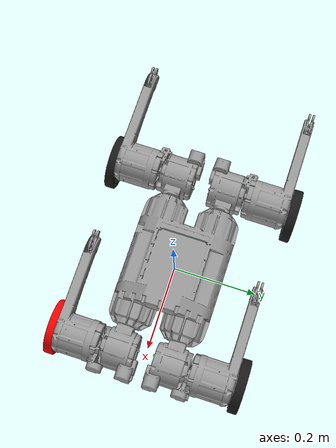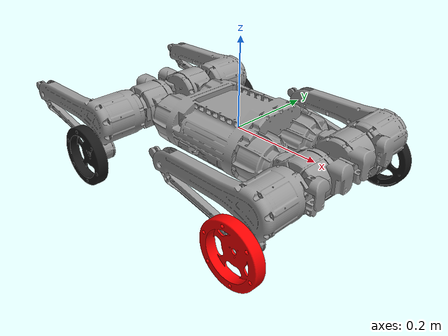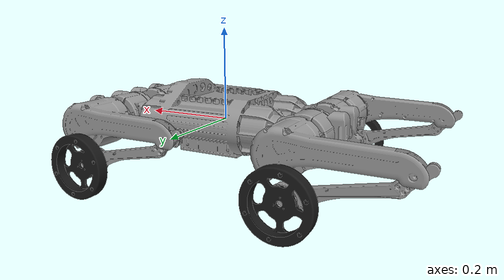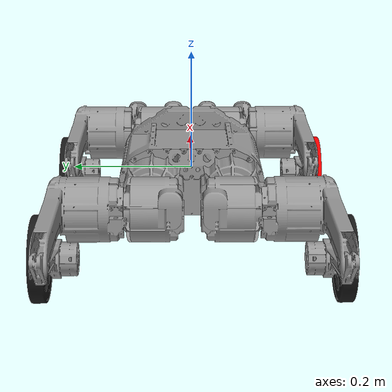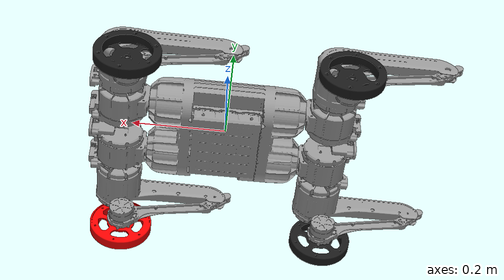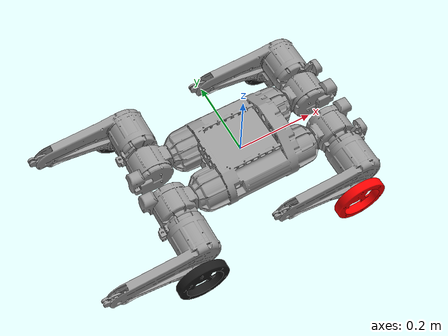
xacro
<?xml version="1.0"?>
<robot name="hb50w" xmlns:xacro="http://www.ros.org/wiki/xacro">

  <!-- sim: none | mock | gazebo -->
  <xacro:arg name="sim" default="none" />
  <xacro:if value="${'$(arg sim)' not in ['none', 'mock', 'gazebo']}">
    ${xacro.fatal("sim must be none, mock or gazebo, got '$(arg sim)'")}
  </xacro:if>

  <xacro:include filename="../common/_materials.xacro" />
  <xacro:include filename="_hb50w_leg_macro.xacro" />

  <!-- Root link, free-floating base -->
  <link name="body">
    <inertial>
      <mass value="9.222" />
      <inertia ixx="0.04644" ixy="0" ixz="0" iyy="0.10130" iyz="0" izz="0.13120" />
    </inertial>
    <visual>
      <geometry>
        <mesh filename="${hb50w_mesh_dir}/hb50w_body.stl" scale="0.001 0.001 0.001" />
      </geometry>
      <material name="silver" />
    </visual>
    <collision>
      <origin xyz="0 0 -0.002" />
      <geometry>
        <box size="0.196 0.152 0.124" />
      </geometry>
    </collision>
    <collision>
      <origin xyz="0 -0.064 0" rpy="0 1.570796 0" />
      <geometry>
        <cylinder length="0.33" radius="0.056" />
      </geometry>
    </collision>
    <collision>
      <origin xyz="0 0.064 0" rpy="0 1.570796 0" />
      <geometry>
        <cylinder length="0.33" radius="0.056" />
      </geometry>
    </collision>
    <collision>
      <origin xyz="0.09 0 0.057" />
      <geometry>
        <box size="0.048 0.128 0.048" />
      </geometry>
    </collision>
  </link>

  <!-- ================= FR (leg 0) ================= -->
  <xacro:hb50w_leg
    prefix="fr"
    j0_xyz="0.1661 -0.064 0" j0_lower="-1.047198" j0_upper="1.570796"
    l0_mesh="hb50w_l0_fr_rl.stl" l0_mass="1.536" l0_inertial_xyz="0.059079 0.004785 -0.000588"
    l0_ixx="0.001492" l0_iyy="0.001701" l0_izz="0.001759"
    j1_xyz="0.0585 -0.0425 0" j1_rpy="0 0 -1.570796" j1_lower="-1.570796" j1_upper="1.570796"
    l1_mass="1.784" l1_inertial_xyz="0.055224 -0.015337 0.003302" l1_ixx="0.006461" l1_iyy="0.002438" l1_izz="0.007101"
    l1_mesh="hb50w_l1_fr.stl"
    l1_collision2_xyz="0.098 -0.134 0.013" l1_collision2_rpy="0.05 0 0"
    j2_xyz="0.10015 -0.22 0" j2_rpy="2.792527 0 0" j2_lower="-2.705260" j2_upper="0"
    l2_inertial_xyz="-0.001567 -0.190811 0.000848" l2_mesh="hb50w_l2_r.stl" l2_visual_rpy="3.141593 0 0"
    l2_collision1_xyz="0 0.01 0.004" l2_collision1_rpy="1.2 0 0"
    l2_collision2_xyz="0 -0.11 0.006" l2_collision2_rpy="1.699994 0.003670 0.010561"
    l2_collision3_xyz="-0.0072 -0.22 0"
    j3_xyz="0.0175 -0.22 0" wheel_material="red"
  />

  <!-- ================= FL (leg 1) ================= -->
  <xacro:hb50w_leg
    prefix="fl"
    j0_xyz="0.1661 0.064 0" j0_lower="-1.570796" j0_upper="1.047198"
    l0_mesh="hb50w_l0_fl_rr.stl" l0_mass="1.536" l0_inertial_xyz="0.059079 -0.004785 0.000588"
    l0_ixx="0.001492" l0_iyy="0.001701" l0_izz="0.001759"
    j1_xyz="0.0585 0.0425 0" j1_rpy="0 0 1.570796" j1_lower="-1.570796" j1_upper="1.570796"
    l1_mass="1.784" l1_inertial_xyz="0.055224 0.015337 0.003302" l1_ixx="0.006461" l1_iyy="0.002438" l1_izz="0.007101"
    l1_mesh="hb50w_l1_fl.stl" l1_visual_rpy="0 0 3.141593"
    l1_collision2_xyz="0.098 0.134 0.013" l1_collision2_rpy="-0.05 0 0"
    j2_xyz="0.10015 0.22 0" j2_rpy="-2.792527 0 0" j2_lower="0" j2_upper="2.705260"
    l2_inertial_xyz="-0.001567 0.190811 0.000848" l2_mesh="hb50w_l2_l.stl" l2_visual_rpy="0 3.141593 0"
    l2_collision1_xyz="0 -0.01 0.004" l2_collision1_rpy="-1.2 0 0"
    l2_collision2_xyz="0 0.11 0.006" l2_collision2_rpy="-1.699994 0.003670 -0.010561"
    l2_collision3_xyz="-0.0072 0.22 0"
    j3_xyz="0.0175 0.22 0" wheel_material="black"
  />

  <!-- ================= RL (leg 2) ================= -->
  <xacro:hb50w_leg
    prefix="rl"
    j0_xyz="-0.1645 0.064 0" j0_rpy="0 0 -3.141593" j0_lower="-1.047198" j0_upper="1.570796"
    l0_mesh="hb50w_l0_fr_rl.stl" l0_mass="1.525" l0_inertial_xyz="0.058684 0.004487 0.000600"
    l0_ixx="0.001474" l0_iyy="0.001666" l0_izz="0.001711"
    j1_xyz="0.0585 -0.0425 0" j1_rpy="0 0 -1.570796" j1_lower="-3.141593" j1_upper="1.570796"
    l1_mass="1.753" l1_inertial_xyz="0.055591 0.019865 0.002679" l1_ixx="0.006329" l1_iyy="0.002338" l1_izz="0.006986"
    l1_mesh="hb50w_l1_rl.stl" l1_visual_rpy="0 0 3.141593"
    l1_collision2_xyz="0.098 0.134 0.013" l1_collision2_rpy="-0.05 0 0"
    j2_xyz="0.10015 0.22 0" j2_rpy="-2.792527 0 0" j2_lower="0" j2_upper="2.705260"
    l2_inertial_xyz="-0.001567 0.190811 0.000848" l2_mesh="hb50w_l2_l.stl" l2_visual_rpy="0 3.141593 0"
    l2_collision1_xyz="0 -0.01 0.004" l2_collision1_rpy="-1.2 0 0"
    l2_collision2_xyz="0 0.11 0.006" l2_collision2_rpy="-1.699994 0.003670 -0.010561"
    l2_collision3_xyz="-0.0072 0.22 0"
    j3_xyz="0.0175 0.22 0" wheel_material="black"
  />

  <!-- ================= RR (leg 3) ================= -->
  <xacro:hb50w_leg
    prefix="rr"
    j0_xyz="-0.1645 -0.064 0" j0_rpy="0 0 -3.141593" j0_lower="-1.570796" j0_upper="1.047198"
    l0_mesh="hb50w_l0_fl_rr.stl" l0_mass="1.525" l0_inertial_xyz="0.058684 -0.004487 -0.000600"
    l0_ixx="0.001474" l0_iyy="0.001666" l0_izz="0.001711"
    j1_xyz="0.0585 0.0425 0" j1_rpy="0 0 1.570796" j1_lower="-1.570796" j1_upper="3.141593"
    l1_mass="1.753" l1_inertial_xyz="0.055591 -0.019865 0.002679" l1_ixx="0.006329" l1_iyy="0.002338" l1_izz="0.006986"
    l1_mesh="hb50w_l1_rr.stl"
    l1_collision2_xyz="0.098 -0.134 0.013" l1_collision2_rpy="0.05 0 0"
    j2_xyz="0.10015 -0.22 0" j2_rpy="2.792527 0 0" j2_lower="-2.705260" j2_upper="0"
    l2_inertial_xyz="-0.001567 -0.190811 0.000848" l2_mesh="hb50w_l2_r.stl" l2_visual_rpy="3.141593 0 0"
    l2_collision1_xyz="0 0.01 0.004" l2_collision1_rpy="1.2 0 0"
    l2_collision2_xyz="0 -0.11 0.006" l2_collision2_rpy="1.699994 0.003670 0.010561"
    l2_collision3_xyz="-0.0072 -0.22 0"
    j3_xyz="0.0175 -0.22 0" wheel_material="black"
  />

  <xacro:if value="${'$(arg sim)' != 'none'}">
    <xacro:include filename="../common/_ros2_control.xacro" />
    <xacro:ros2_control_block name="hb50w" sim="$(arg sim)" wheels="true" />
  </xacro:if>

  <xacro:if value="${'$(arg sim)' == 'gazebo'}">
    <xacro:include filename="../common/_gazebo.xacro" />
    <xacro:gazebo_block robot="hb50w" imu_xyz="0.069301 0 0" />
  </xacro:if>

</robot>

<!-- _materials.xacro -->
<robot xmlns:xacro="http://www.ros.org/wiki/xacro">

  <material name="silver">
    <color rgba="0.6 0.6 0.6 1" />
  </material>
  <material name="black">
    <color rgba="0.1 0.1 0.1 1" />
  </material>
  <material name="red">
    <color rgba="1 0 0 1" />
  </material>
  <material name="orange">
    <color rgba="1 0.41 0 1" />
  </material>

</robot>

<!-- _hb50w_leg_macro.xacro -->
<robot xmlns:xacro="http://www.ros.org/wiki/xacro">

  <xacro:property name="hb50w_mesh_dir" value="package://robot_models/meshes/hb50w/visual" />

  <!-- One leg: j0 hip abduction, j1 hip flexion, j2 knee, j3 wheel. -->
  <xacro:macro name="hb50w_leg" params="
      prefix
      j0_xyz j0_rpy:='0 0 0' j0_lower j0_upper
      l0_mesh l0_mass l0_inertial_xyz l0_ixx l0_iyy l0_izz
      j1_xyz j1_rpy j1_lower j1_upper
      l1_mass l1_inertial_xyz l1_ixx l1_iyy l1_izz l1_mesh l1_visual_rpy:='0 0 0'
      l1_collision2_xyz l1_collision2_rpy
      j2_xyz j2_rpy j2_lower j2_upper
      l2_inertial_xyz l2_mesh l2_visual_rpy
      l2_collision1_xyz l2_collision1_rpy
      l2_collision2_xyz l2_collision2_rpy
      l2_collision3_xyz
      j3_xyz wheel_material
    ">

    <!-- L0 : hip abduction link -->
    <link name="${prefix}_l0">
      <inertial>
        <origin xyz="${l0_inertial_xyz}" />
        <mass value="${l0_mass}" />
        <inertia ixx="${l0_ixx}" ixy="0" ixz="0" iyy="${l0_iyy}" iyz="0" izz="${l0_izz}" />
      </inertial>
      <visual>
        <geometry>
          <mesh filename="${hb50w_mesh_dir}/${l0_mesh}" scale="0.001 0.001 0.001" />
        </geometry>
        <material name="silver" />
      </visual>
      <collision>
        <origin xyz="0.0585 0 0" rpy="1.570796 0 0" />
        <geometry>
          <cylinder length="0.084" radius="0.051" />
        </geometry>
      </collision>
    </link>

    <!-- L1 : upper leg -->
    <link name="${prefix}_l1">
      <inertial>
        <origin xyz="${l1_inertial_xyz}" />
        <mass value="${l1_mass}" />
        <inertia ixx="${l1_ixx}" ixy="0" ixz="0" iyy="${l1_iyy}" iyz="0" izz="${l1_izz}" />
      </inertial>
      <visual>
        <origin rpy="${l1_visual_rpy}" />
        <geometry>
          <mesh filename="${hb50w_mesh_dir}/${l1_mesh}" scale="0.001 0.001 0.001" />
        </geometry>
        <material name="silver" />
      </visual>
      <collision>
        <origin xyz="0.057 0 0" rpy="0 1.570796 0" />
        <geometry>
          <cylinder length="0.11" radius="0.051" />
        </geometry>
      </collision>
      <collision>
        <origin xyz="${l1_collision2_xyz}" rpy="${l1_collision2_rpy}" />
        <geometry>
          <box size="0.028 0.22 0.052" />
        </geometry>
      </collision>
    </link>

    <!-- L2 : lower leg -->
    <link name="${prefix}_l2">
      <inertial>
        <origin xyz="${l2_inertial_xyz}" />
        <mass value="0.526" />
        <inertia ixx="0.002319" ixy="0" ixz="0" iyy="0.0001582" iyz="0" izz="0.002306" />
      </inertial>
      <visual>
        <origin rpy="${l2_visual_rpy}" />
        <geometry>
          <mesh filename="${hb50w_mesh_dir}/${l2_mesh}" scale="0.001 0.001 0.001" />
        </geometry>
        <material name="silver" />
      </visual>
      <collision>
        <origin xyz="${l2_collision1_xyz}" rpy="${l2_collision1_rpy}" />
        <geometry>
          <cylinder length="0.06" radius="0.012" />
        </geometry>
      </collision>
      <collision>
        <origin xyz="${l2_collision2_xyz}" rpy="${l2_collision2_rpy}" />
        <geometry>
          <cylinder length="0.196" radius="0.016" />
        </geometry>
      </collision>
      <collision>
        <origin xyz="${l2_collision3_xyz}" rpy="0 1.570796 0" />
        <geometry>
          <cylinder length="0.05" radius="0.028" />
        </geometry>
      </collision>
    </link>

    <!-- Wheel -->
    <link name="${prefix}_w">
      <inertial>
        <origin xyz="0.006794 0 0" />
        <mass value="0.235" />
        <inertia ixx="0.0007179" ixy="0" ixz="0" iyy="0.0003692" iyz="0" izz="0.0003692" />
      </inertial>
      <visual>
        <geometry>
          <mesh filename="${hb50w_mesh_dir}/hb50w_wheel.stl" scale="0.001 0.001 0.001" />
        </geometry>
        <material name="${wheel_material}" />
      </visual>
      <collision>
        <origin xyz="0.009 0 0" rpy="0 1.570796 0" />
        <geometry>
          <cylinder length="0.024" radius="0.0679" />
        </geometry>
      </collision>
    </link>

    <!-- Joints -->
    <joint name="${prefix}_j0" type="revolute">
      <parent link="body" />
      <child link="${prefix}_l0" />
      <origin xyz="${j0_xyz}" rpy="${j0_rpy}" />
      <axis xyz="1 0 0" />
      <limit effort="24.0" lower="${j0_lower}" upper="${j0_upper}" velocity="20.0" />
      <dynamics damping="0.1" friction="0.48" />
    </joint>

    <joint name="${prefix}_j1" type="revolute">
      <parent link="${prefix}_l0" />
      <child link="${prefix}_l1" />
      <origin xyz="${j1_xyz}" rpy="${j1_rpy}" />
      <axis xyz="1 0 0" />
      <limit effort="24.0" lower="${j1_lower}" upper="${j1_upper}" velocity="20.0" />
      <dynamics damping="0.1" friction="0.48" />
    </joint>

    <joint name="${prefix}_j2" type="revolute">
      <parent link="${prefix}_l1" />
      <child link="${prefix}_l2" />
      <origin xyz="${j2_xyz}" rpy="${j2_rpy}" />
      <axis xyz="1 0 0" />
      <limit effort="24.0" lower="${j2_lower}" upper="${j2_upper}" velocity="20.0" />
      <dynamics damping="0.1" friction="0.48" />
    </joint>

    <joint name="${prefix}_j3" type="continuous">
      <parent link="${prefix}_l2" />
      <child link="${prefix}_w" />
      <origin xyz="${j3_xyz}" />
      <axis xyz="1 0 0" />
      <limit effort="7.0" velocity="40.0" />
      <dynamics damping="0.1" friction="0.1" />
    </joint>

  </xacro:macro>
</robot>
